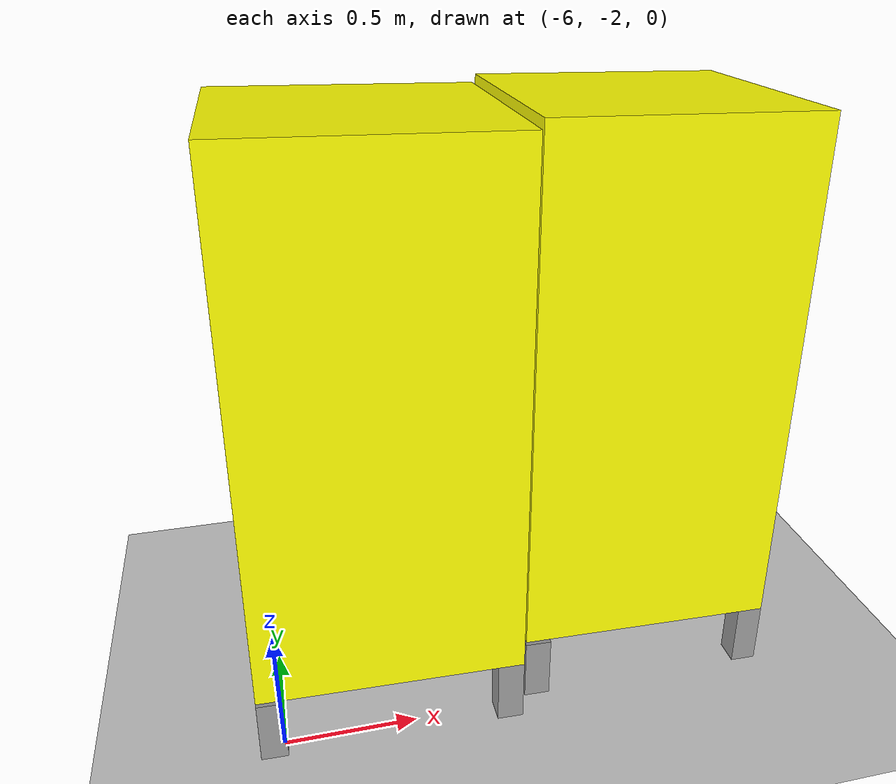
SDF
<sdf version="1.6">
 <world name="default">
  <model name="ground_plane">
   <static>1</static>
   <link name="link">
    <collision name="collision">
     <geometry><plane><normal>0 0 1</normal><size>100 100</size></plane></geometry>
     <surface>
      <contact><collide_bitmask>65535</collide_bitmask></contact>
      <friction><ode><mu>100</mu><mu2>50</mu2></ode></friction>
     </surface>
    </collision>
    <visual name="visual">
     <cast_shadows>0</cast_shadows>
     <geometry><plane><normal>0 0 1</normal><size>100 100</size></plane></geometry>
     <material>
      <script><uri>file://media/materials/scripts/gazebo.material</uri><name>Gazebo/Grey</name></script>
     </material>
    </visual>
   </link>
  </model>
  <model name="StoragePod_clone">
   <link name="link_2">
    <inertial>
     <mass>1</mass>
     <inertia>
      <ixx>0.166667</ixx>
      <ixy>0</ixy>
      <ixz>0</ixz>
      <iyy>0.166667</iyy>
      <iyz>0</iyz>
      <izz>0.166667</izz>
     </inertia>
    </inertial>
    <pose>-0.45 -0.45 -0.237 0 -0 0</pose>
    <visual name="visual">
     <geometry><box><size>0.1 0.1 0.25</size></box></geometry>
     <material>
      <lighting>1</lighting>
      <script><uri>file://media/materials/scripts/gazebo.material</uri><name>Gazebo/Grey</name></script>
      <shader type="pixel"><normal_map>__default__</normal_map></shader>
      <ambient>0.3 0.3 0.3 1</ambient>
      <diffuse>0.7 0.7 0.7 1</diffuse>
      <specular>0.01 0.01 0.01 1</specular>
      <emissive>0 0 0 1</emissive>
     </material>
    </visual>
    <collision name="collision">
     <geometry><box><size>0.1 0.1 0.25</size></box></geometry>
     <surface>
      <friction>
       <ode><mu>1</mu><mu2>1</mu2><fdir1>0 0 0</fdir1><slip1>0</slip1><slip2>0</slip2></ode>
       <torsional>
        <coefficient>1</coefficient>
        <patch_radius>0</patch_radius>
        <surface_radius>0</surface_radius>
        <use_patch_radius>1</use_patch_radius>
        <ode><slip>0</slip></ode>
       </torsional>
      </friction>
      <bounce><restitution_coefficient>0</restitution_coefficient><threshold>1e+06</threshold></bounce>
      <contact>
       <collide_without_contact>0</collide_without_contact>
       <collide_without_contact_bitmask>1</collide_without_contact_bitmask>
       <collide_bitmask>1</collide_bitmask>
       <ode>
        <soft_cfm>0</soft_cfm>
        <soft_erp>0.2</soft_erp>
        <kp>1e+13</kp>
        <kd>1</kd>
        <max_vel>0.01</max_vel>
        <min_depth>0</min_depth>
       </ode>
       <bullet>
        <split_impulse>1</split_impulse>
        <split_impulse_penetration_threshold>-0.01</split_impulse_penetration_threshold>
        <soft_cfm>0</soft_cfm>
        <soft_erp>0.2</soft_erp>
        <kp>1e+13</kp>
        <kd>1</kd>
       </bullet>
      </contact>
     </surface>
    </collision>
   </link>
   <link name="link_2_clone">
    <inertial>
     <mass>1</mass>
     <inertia>
      <ixx>0.166667</ixx>
      <ixy>0</ixy>
      <ixz>0</ixz>
      <iyy>0.166667</iyy>
      <iyz>0</iyz>
      <izz>0.166667</izz>
     </inertia>
    </inertial>
    <pose>0.45 0.45 -0.222 0 -0 0</pose>
    <visual name="visual">
     <geometry><box><size>0.1 0.1 0.25</size></box></geometry>
     <material>
      <lighting>1</lighting>
      <script><uri>file://media/materials/scripts/gazebo.material</uri><name>Gazebo/Grey</name></script>
      <shader type="pixel"><normal_map>__default__</normal_map></shader>
      <ambient>0.3 0.3 0.3 1</ambient>
      <diffuse>0.7 0.7 0.7 1</diffuse>
      <specular>0.01 0.01 0.01 1</specular>
      <emissive>0 0 0 1</emissive>
     </material>
    </visual>
    <collision name="collision">
     <geometry><box><size>0.1 0.1 0.25</size></box></geometry>
     <surface>
      <friction>
       <ode><mu>1</mu><mu2>1</mu2><fdir1>0 0 0</fdir1><slip1>0</slip1><slip2>0</slip2></ode>
       <torsional>
        <coefficient>1</coefficient>
        <patch_radius>0</patch_radius>
        <surface_radius>0</surface_radius>
        <use_patch_radius>1</use_patch_radius>
        <ode><slip>0</slip></ode>
       </torsional>
      </friction>
      <bounce><restitution_coefficient>0</restitution_coefficient><threshold>1e+06</threshold></bounce>
      <contact>
       <collide_without_contact>0</collide_without_contact>
       <collide_without_contact_bitmask>1</collide_without_contact_bitmask>
       <collide_bitmask>1</collide_bitmask>
       <ode>
        <soft_cfm>0</soft_cfm>
        <soft_erp>0.2</soft_erp>
        <kp>1e+13</kp>
        <kd>1</kd>
        <max_vel>0.01</max_vel>
        <min_depth>0</min_depth>
       </ode>
       <bullet>
        <split_impulse>1</split_impulse>
        <split_impulse_penetration_threshold>-0.01</split_impulse_penetration_threshold>
        <soft_cfm>0</soft_cfm>
        <soft_erp>0.2</soft_erp>
        <kp>1e+13</kp>
        <kd>1</kd>
       </bullet>
      </contact>
     </surface>
    </collision>
   </link>
   <link name="link_2_clone_0">
    <inertial>
     <mass>1</mass>
     <inertia>
      <ixx>0.166667</ixx>
      <ixy>0</ixy>
      <ixz>0</ixz>
      <iyy>0.166667</iyy>
      <iyz>0</iyz>
      <izz>0.166667</izz>
     </inertia>
    </inertial>
    <pose>0.45 -0.45 -0.222 0 -0 0</pose>
    <visual name="visual">
     <geometry><box><size>0.1 0.1 0.25</size></box></geometry>
     <material>
      <lighting>1</lighting>
      <script><uri>file://media/materials/scripts/gazebo.material</uri><name>Gazebo/Grey</name></script>
      <shader type="pixel"><normal_map>__default__</normal_map></shader>
      <ambient>0.3 0.3 0.3 1</ambient>
      <diffuse>0.7 0.7 0.7 1</diffuse>
      <specular>0.01 0.01 0.01 1</specular>
      <emissive>0 0 0 1</emissive>
     </material>
    </visual>
    <collision name="collision">
     <geometry><box><size>0.1 0.1 0.25</size></box></geometry>
     <surface>
      <friction>
       <ode><mu>1</mu><mu2>1</mu2><fdir1>0 0 0</fdir1><slip1>0</slip1><slip2>0</slip2></ode>
       <torsional>
        <coefficient>1</coefficient>
        <patch_radius>0</patch_radius>
        <surface_radius>0</surface_radius>
        <use_patch_radius>1</use_patch_radius>
        <ode><slip>0</slip></ode>
       </torsional>
      </friction>
      <bounce><restitution_coefficient>0</restitution_coefficient><threshold>1e+06</threshold></bounce>
      <contact>
       <collide_without_contact>0</collide_without_contact>
       <collide_without_contact_bitmask>1</collide_without_contact_bitmask>
       <collide_bitmask>1</collide_bitmask>
       <ode>
        <soft_cfm>0</soft_cfm>
        <soft_erp>0.2</soft_erp>
        <kp>1e+13</kp>
        <kd>1</kd>
        <max_vel>0.01</max_vel>
        <min_depth>0</min_depth>
       </ode>
       <bullet>
        <split_impulse>1</split_impulse>
        <split_impulse_penetration_threshold>-0.01</split_impulse_penetration_threshold>
        <soft_cfm>0</soft_cfm>
        <soft_erp>0.2</soft_erp>
        <kp>1e+13</kp>
        <kd>1</kd>
       </bullet>
      </contact>
     </surface>
    </collision>
   </link>
   <link name="link_2_clone_1">
    <inertial>
     <mass>1</mass>
     <inertia>
      <ixx>0.166667</ixx>
      <ixy>0</ixy>
      <ixz>0</ixz>
      <iyy>0.166667</iyy>
      <iyz>0</iyz>
      <izz>0.166667</izz>
     </inertia>
    </inertial>
    <pose>-0.45 0.45 -0.222 0 -0 0</pose>
    <visual name="visual">
     <geometry><box><size>0.1 0.1 0.25</size></box></geometry>
     <material>
      <lighting>1</lighting>
      <script><uri>file://media/materials/scripts/gazebo.material</uri><name>Gazebo/Grey</name></script>
      <shader type="pixel"><normal_map>__default__</normal_map></shader>
      <ambient>0.3 0.3 0.3 1</ambient>
      <diffuse>0.7 0.7 0.7 1</diffuse>
      <specular>0.01 0.01 0.01 1</specular>
      <emissive>0 0 0 1</emissive>
     </material>
    </visual>
    <collision name="collision">
     <geometry><box><size>0.1 0.1 0.25</size></box></geometry>
     <surface>
      <friction>
       <ode><mu>1</mu><mu2>1</mu2><fdir1>0 0 0</fdir1><slip1>0</slip1><slip2>0</slip2></ode>
       <torsional>
        <coefficient>1</coefficient>
        <patch_radius>0</patch_radius>
        <surface_radius>0</surface_radius>
        <use_patch_radius>1</use_patch_radius>
        <ode><slip>0</slip></ode>
       </torsional>
      </friction>
      <bounce><restitution_coefficient>0</restitution_coefficient><threshold>1e+06</threshold></bounce>
      <contact>
       <collide_without_contact>0</collide_without_contact>
       <collide_without_contact_bitmask>1</collide_without_contact_bitmask>
       <collide_bitmask>1</collide_bitmask>
       <ode>
        <soft_cfm>0</soft_cfm>
        <soft_erp>0.2</soft_erp>
        <kp>1e+13</kp>
        <kd>1</kd>
        <max_vel>0.01</max_vel>
        <min_depth>0</min_depth>
       </ode>
       <bullet>
        <split_impulse>1</split_impulse>
        <split_impulse_penetration_threshold>-0.01</split_impulse_penetration_threshold>
        <soft_cfm>0</soft_cfm>
        <soft_erp>0.2</soft_erp>
        <kp>1e+13</kp>
        <kd>1</kd>
       </bullet>
      </contact>
     </surface>
    </collision>
   </link>
   <link name="link_3">
    <inertial>
     <mass>1</mass>
     <inertia>
      <ixx>0.166667</ixx>
      <ixy>0</ixy>
      <ixz>0</ixz>
      <iyy>0.166667</iyy>
      <iyz>0</iyz>
      <izz>0.166667</izz>
     </inertia>
    </inertial>
    <pose>0 0 0.903 0 -0 0</pose>
    <visual name="visual">
     <geometry><box><size>1 1 2</size></box></geometry>
     <material>
      <lighting>1</lighting>
      <script><uri>file://media/materials/scripts/gazebo.material</uri><name>Gazebo/Grey</name></script>
      <shader type="pixel"><normal_map>__default__</normal_map></shader>
      <ambient>1 1 0 1</ambient>
      <diffuse>1 1 0 1</diffuse>
      <specular>0.01 0.01 0.01 1</specular>
      <emissive>0 0 0 1</emissive>
     </material>
    </visual>
    <collision name="collision">
     <geometry><box><size>1 1 2</size></box></geometry>
     <surface>
      <friction>
       <ode><mu>1</mu><mu2>1</mu2><fdir1>0 0 0</fdir1><slip1>0</slip1><slip2>0</slip2></ode>
       <torsional>
        <coefficient>1</coefficient>
        <patch_radius>0</patch_radius>
        <surface_radius>0</surface_radius>
        <use_patch_radius>1</use_patch_radius>
        <ode><slip>0</slip></ode>
       </torsional>
      </friction>
      <bounce><restitution_coefficient>0</restitution_coefficient><threshold>1e+06</threshold></bounce>
      <contact>
       <collide_without_contact>0</collide_without_contact>
       <collide_without_contact_bitmask>1</collide_without_contact_bitmask>
       <collide_bitmask>1</collide_bitmask>
       <ode>
        <soft_cfm>0</soft_cfm>
        <soft_erp>0.2</soft_erp>
        <kp>1e+13</kp>
        <kd>1</kd>
        <max_vel>0.01</max_vel>
        <min_depth>0</min_depth>
       </ode>
       <bullet>
        <split_impulse>1</split_impulse>
        <split_impulse_penetration_threshold>-0.01</split_impulse_penetration_threshold>
        <soft_cfm>0</soft_cfm>
        <soft_erp>0.2</soft_erp>
        <kp>1e+13</kp>
        <kd>1</kd>
       </bullet>
      </contact>
     </surface>
    </collision>
   </link>
   <joint name="link_3_JOINT_0" type="fixed">
    <parent>link_3</parent>
    <child>link_2_clone_0</child>
    <physics>
     <ode><limit><cfm>0</cfm><erp>0.2</erp></limit><suspension><cfm>0</cfm><erp>0.2</erp></suspension></ode>
    </physics>
   </joint>
   <joint name="link_3_JOINT_1" type="fixed">
    <parent>link_3</parent>
    <child>link_2</child>
    <physics>
     <ode><limit><cfm>0</cfm><erp>0.2</erp></limit><suspension><cfm>0</cfm><erp>0.2</erp></suspension></ode>
    </physics>
   </joint>
   <joint name="link_3_JOINT_2" type="fixed">
    <parent>link_3</parent>
    <child>link_2_clone</child>
    <physics>
     <ode><limit><cfm>0</cfm><erp>0.2</erp></limit><suspension><cfm>0</cfm><erp>0.2</erp></suspension></ode>
    </physics>
   </joint>
   <joint name="link_3_JOINT_3" type="fixed">
    <parent>link_3</parent>
    <child>link_2_clone_1</child>
    <physics>
     <ode><limit><cfm>0</cfm><erp>0.2</erp></limit><suspension><cfm>0</cfm><erp>0.2</erp></suspension></ode>
    </physics>
   </joint>
   <static>0</static>
   <pose>-5.57858 -1.57087 0.355285 -8.8e-05 0.016577 -0.01307</pose>
  </model>
  <model name="StoragePod_clone_0">
   <link name="link_2">
    <inertial>
     <mass>1</mass>
     <inertia>
      <ixx>0.166667</ixx>
      <ixy>0</ixy>
      <ixz>0</ixz>
      <iyy>0.166667</iyy>
      <iyz>0</iyz>
      <izz>0.166667</izz>
     </inertia>
    </inertial>
    <pose>-0.45 -0.45 -0.237 0 -0 0</pose>
    <visual name="visual">
     <geometry><box><size>0.1 0.1 0.25</size></box></geometry>
     <material>
      <lighting>1</lighting>
      <script><uri>file://media/materials/scripts/gazebo.material</uri><name>Gazebo/Grey</name></script>
      <shader type="pixel"><normal_map>__default__</normal_map></shader>
      <ambient>0.3 0.3 0.3 1</ambient>
      <diffuse>0.7 0.7 0.7 1</diffuse>
      <specular>0.01 0.01 0.01 1</specular>
      <emissive>0 0 0 1</emissive>
     </material>
    </visual>
    <collision name="collision">
     <geometry><box><size>0.1 0.1 0.25</size></box></geometry>
     <surface>
      <friction>
       <ode><mu>1</mu><mu2>1</mu2><fdir1>0 0 0</fdir1><slip1>0</slip1><slip2>0</slip2></ode>
       <torsional>
        <coefficient>1</coefficient>
        <patch_radius>0</patch_radius>
        <surface_radius>0</surface_radius>
        <use_patch_radius>1</use_patch_radius>
        <ode><slip>0</slip></ode>
       </torsional>
      </friction>
      <bounce><restitution_coefficient>0</restitution_coefficient><threshold>1e+06</threshold></bounce>
      <contact>
       <collide_without_contact>0</collide_without_contact>
       <collide_without_contact_bitmask>1</collide_without_contact_bitmask>
       <collide_bitmask>1</collide_bitmask>
       <ode>
        <soft_cfm>0</soft_cfm>
        <soft_erp>0.2</soft_erp>
        <kp>1e+13</kp>
        <kd>1</kd>
        <max_vel>0.01</max_vel>
        <min_depth>0</min_depth>
       </ode>
       <bullet>
        <split_impulse>1</split_impulse>
        <split_impulse_penetration_threshold>-0.01</split_impulse_penetration_threshold>
        <soft_cfm>0</soft_cfm>
        <soft_erp>0.2</soft_erp>
        <kp>1e+13</kp>
        <kd>1</kd>
       </bullet>
      </contact>
     </surface>
    </collision>
   </link>
   <link name="link_2_clone">
    <inertial>
     <mass>1</mass>
     <inertia>
      <ixx>0.166667</ixx>
      <ixy>0</ixy>
      <ixz>0</ixz>
      <iyy>0.166667</iyy>
      <iyz>0</iyz>
      <izz>0.166667</izz>
     </inertia>
    </inertial>
    <pose>0.45 0.45 -0.222 0 -0 0</pose>
    <visual name="visual">
     <geometry><box><size>0.1 0.1 0.25</size></box></geometry>
     <material>
      <lighting>1</lighting>
      <script><uri>file://media/materials/scripts/gazebo.material</uri><name>Gazebo/Grey</name></script>
      <shader type="pixel"><normal_map>__default__</normal_map></shader>
      <ambient>0.3 0.3 0.3 1</ambient>
      <diffuse>0.7 0.7 0.7 1</diffuse>
      <specular>0.01 0.01 0.01 1</specular>
      <emissive>0 0 0 1</emissive>
     </material>
    </visual>
    <collision name="collision">
     <geometry><box><size>0.1 0.1 0.25</size></box></geometry>
     <surface>
      <friction>
       <ode><mu>1</mu><mu2>1</mu2><fdir1>0 0 0</fdir1><slip1>0</slip1><slip2>0</slip2></ode>
       <torsional>
        <coefficient>1</coefficient>
        <patch_radius>0</patch_radius>
        <surface_radius>0</surface_radius>
        <use_patch_radius>1</use_patch_radius>
        <ode><slip>0</slip></ode>
       </torsional>
      </friction>
      <bounce><restitution_coefficient>0</restitution_coefficient><threshold>1e+06</threshold></bounce>
      <contact>
       <collide_without_contact>0</collide_without_contact>
       <collide_without_contact_bitmask>1</collide_without_contact_bitmask>
       <collide_bitmask>1</collide_bitmask>
       <ode>
        <soft_cfm>0</soft_cfm>
        <soft_erp>0.2</soft_erp>
        <kp>1e+13</kp>
        <kd>1</kd>
        <max_vel>0.01</max_vel>
        <min_depth>0</min_depth>
       </ode>
       <bullet>
        <split_impulse>1</split_impulse>
        <split_impulse_penetration_threshold>-0.01</split_impulse_penetration_threshold>
        <soft_cfm>0</soft_cfm>
        <soft_erp>0.2</soft_erp>
        <kp>1e+13</kp>
        <kd>1</kd>
       </bullet>
      </contact>
     </surface>
    </collision>
   </link>
   <link name="link_2_clone_0">
    <inertial>
     <mass>1</mass>
     <inertia>
      <ixx>0.166667</ixx>
      <ixy>0</ixy>
      <ixz>0</ixz>
      <iyy>0.166667</iyy>
      <iyz>0</iyz>
      <izz>0.166667</izz>
     </inertia>
    </inertial>
    <pose>0.45 -0.45 -0.222 0 -0 0</pose>
    <visual name="visual">
     <geometry><box><size>0.1 0.1 0.25</size></box></geometry>
     <material>
      <lighting>1</lighting>
      <script><uri>file://media/materials/scripts/gazebo.material</uri><name>Gazebo/Grey</name></script>
      <shader type="pixel"><normal_map>__default__</normal_map></shader>
      <ambient>0.3 0.3 0.3 1</ambient>
      <diffuse>0.7 0.7 0.7 1</diffuse>
      <specular>0.01 0.01 0.01 1</specular>
      <emissive>0 0 0 1</emissive>
     </material>
    </visual>
    <collision name="collision">
     <geometry><box><size>0.1 0.1 0.25</size></box></geometry>
     <surface>
      <friction>
       <ode><mu>1</mu><mu2>1</mu2><fdir1>0 0 0</fdir1><slip1>0</slip1><slip2>0</slip2></ode>
       <torsional>
        <coefficient>1</coefficient>
        <patch_radius>0</patch_radius>
        <surface_radius>0</surface_radius>
        <use_patch_radius>1</use_patch_radius>
        <ode><slip>0</slip></ode>
       </torsional>
      </friction>
      <bounce><restitution_coefficient>0</restitution_coefficient><threshold>1e+06</threshold></bounce>
      <contact>
       <collide_without_contact>0</collide_without_contact>
       <collide_without_contact_bitmask>1</collide_without_contact_bitmask>
       <collide_bitmask>1</collide_bitmask>
       <ode>
        <soft_cfm>0</soft_cfm>
        <soft_erp>0.2</soft_erp>
        <kp>1e+13</kp>
        <kd>1</kd>
        <max_vel>0.01</max_vel>
        <min_depth>0</min_depth>
       </ode>
       <bullet>
        <split_impulse>1</split_impulse>
        <split_impulse_penetration_threshold>-0.01</split_impulse_penetration_threshold>
        <soft_cfm>0</soft_cfm>
        <soft_erp>0.2</soft_erp>
        <kp>1e+13</kp>
        <kd>1</kd>
       </bullet>
      </contact>
     </surface>
    </collision>
   </link>
   <link name="link_2_clone_1">
    <inertial>
     <mass>1</mass>
     <inertia>
      <ixx>0.166667</ixx>
      <ixy>0</ixy>
      <ixz>0</ixz>
      <iyy>0.166667</iyy>
      <iyz>0</iyz>
      <izz>0.166667</izz>
     </inertia>
    </inertial>
    <pose>-0.45 0.45 -0.222 0 -0 0</pose>
    <visual name="visual">
     <geometry><box><size>0.1 0.1 0.25</size></box></geometry>
     <material>
      <lighting>1</lighting>
      <script><uri>file://media/materials/scripts/gazebo.material</uri><name>Gazebo/Grey</name></script>
      <shader type="pixel"><normal_map>__default__</normal_map></shader>
      <ambient>0.3 0.3 0.3 1</ambient>
      <diffuse>0.7 0.7 0.7 1</diffuse>
      <specular>0.01 0.01 0.01 1</specular>
      <emissive>0 0 0 1</emissive>
     </material>
    </visual>
    <collision name="collision">
     <geometry><box><size>0.1 0.1 0.25</size></box></geometry>
     <surface>
      <friction>
       <ode><mu>1</mu><mu2>1</mu2><fdir1>0 0 0</fdir1><slip1>0</slip1><slip2>0</slip2></ode>
       <torsional>
        <coefficient>1</coefficient>
        <patch_radius>0</patch_radius>
        <surface_radius>0</surface_radius>
        <use_patch_radius>1</use_patch_radius>
        <ode><slip>0</slip></ode>
       </torsional>
      </friction>
      <bounce><restitution_coefficient>0</restitution_coefficient><threshold>1e+06</threshold></bounce>
      <contact>
       <collide_without_contact>0</collide_without_contact>
       <collide_without_contact_bitmask>1</collide_without_contact_bitmask>
       <collide_bitmask>1</collide_bitmask>
       <ode>
        <soft_cfm>0</soft_cfm>
        <soft_erp>0.2</soft_erp>
        <kp>1e+13</kp>
        <kd>1</kd>
        <max_vel>0.01</max_vel>
        <min_depth>0</min_depth>
       </ode>
       <bullet>
        <split_impulse>1</split_impulse>
        <split_impulse_penetration_threshold>-0.01</split_impulse_penetration_threshold>
        <soft_cfm>0</soft_cfm>
        <soft_erp>0.2</soft_erp>
        <kp>1e+13</kp>
        <kd>1</kd>
       </bullet>
      </contact>
     </surface>
    </collision>
   </link>
   <link name="link_3">
    <inertial>
     <mass>1</mass>
     <inertia>
      <ixx>0.166667</ixx>
      <ixy>0</ixy>
      <ixz>0</ixz>
      <iyy>0.166667</iyy>
      <iyz>0</iyz>
      <izz>0.166667</izz>
     </inertia>
    </inertial>
    <pose>0 0 0.903 0 -0 0</pose>
    <visual name="visual">
     <geometry><box><size>1 1 2</size></box></geometry>
     <material>
      <lighting>1</lighting>
      <script><uri>file://media/materials/scripts/gazebo.material</uri><name>Gazebo/Grey</name></script>
      <shader type="pixel"><normal_map>__default__</normal_map></shader>
      <ambient>1 1 0 1</ambient>
      <diffuse>1 1 0 1</diffuse>
      <specular>0.01 0.01 0.01 1</specular>
      <emissive>0 0 0 1</emissive>
     </material>
    </visual>
    <collision name="collision">
     <geometry><box><size>1 1 2</size></box></geometry>
     <surface>
      <friction>
       <ode><mu>1</mu><mu2>1</mu2><fdir1>0 0 0</fdir1><slip1>0</slip1><slip2>0</slip2></ode>
       <torsional>
        <coefficient>1</coefficient>
        <patch_radius>0</patch_radius>
        <surface_radius>0</surface_radius>
        <use_patch_radius>1</use_patch_radius>
        <ode><slip>0</slip></ode>
       </torsional>
      </friction>
      <bounce><restitution_coefficient>0</restitution_coefficient><threshold>1e+06</threshold></bounce>
      <contact>
       <collide_without_contact>0</collide_without_contact>
       <collide_without_contact_bitmask>1</collide_without_contact_bitmask>
       <collide_bitmask>1</collide_bitmask>
       <ode>
        <soft_cfm>0</soft_cfm>
        <soft_erp>0.2</soft_erp>
        <kp>1e+13</kp>
        <kd>1</kd>
        <max_vel>0.01</max_vel>
        <min_depth>0</min_depth>
       </ode>
       <bullet>
        <split_impulse>1</split_impulse>
        <split_impulse_penetration_threshold>-0.01</split_impulse_penetration_threshold>
        <soft_cfm>0</soft_cfm>
        <soft_erp>0.2</soft_erp>
        <kp>1e+13</kp>
        <kd>1</kd>
       </bullet>
      </contact>
     </surface>
    </collision>
   </link>
   <joint name="link_3_JOINT_0" type="fixed">
    <parent>link_3</parent>
    <child>link_2_clone_0</child>
    <physics>
     <ode><limit><cfm>0</cfm><erp>0.2</erp></limit><suspension><cfm>0</cfm><erp>0.2</erp></suspension></ode>
    </physics>
   </joint>
   <joint name="link_3_JOINT_1" type="fixed">
    <parent>link_3</parent>
    <child>link_2</child>
    <physics>
     <ode><limit><cfm>0</cfm><erp>0.2</erp></limit><suspension><cfm>0</cfm><erp>0.2</erp></suspension></ode>
    </physics>
   </joint>
   <joint name="link_3_JOINT_2" type="fixed">
    <parent>link_3</parent>
    <child>link_2_clone</child>
    <physics>
     <ode><limit><cfm>0</cfm><erp>0.2</erp></limit><suspension><cfm>0</cfm><erp>0.2</erp></suspension></ode>
    </physics>
   </joint>
   <joint name="link_3_JOINT_3" type="fixed">
    <parent>link_3</parent>
    <child>link_2_clone_1</child>
    <physics>
     <ode><limit><cfm>0</cfm><erp>0.2</erp></limit><suspension><cfm>0</cfm><erp>0.2</erp></suspension></ode>
    </physics>
   </joint>
   <static>0</static>
   <pose>-4.54292 -1.48379 0.355284 -7e-06 0.016658 -0.012942</pose>
  </model>
 </world>
</sdf>
